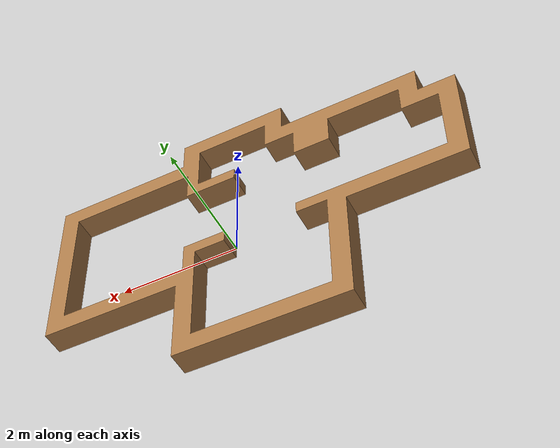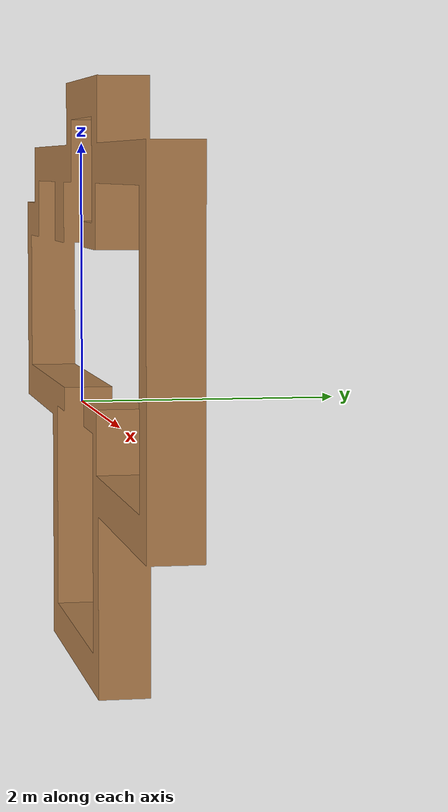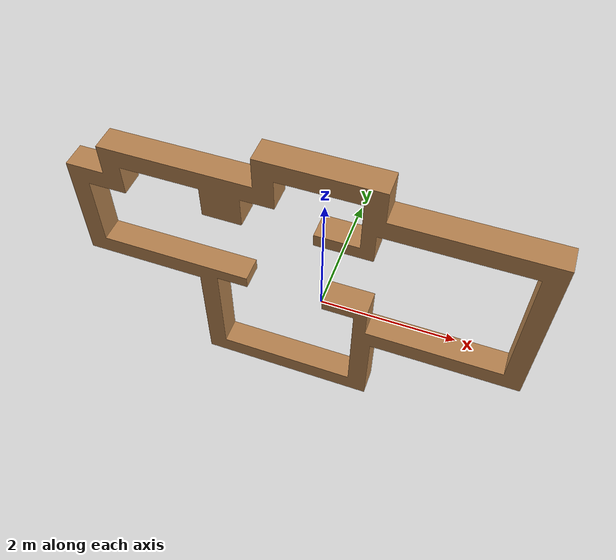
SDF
<sdf version='1.7'>
  <model name='urdf_1'>
  <static>true</static>
    <link name='base_link'>
      <inertial>
        <pose>-0.37306 0.21 0.38478 0 -0 0</pose>
        <mass>2996</mass>
        <inertia>
          <ixx>6188.8</ixx>
          <ixy>-1.0916e-14</ixy>
          <ixz>8.4617</ixz>
          <iyy>19100</iyy>
          <iyz>-7.506e-14</iyz>
          <izz>12991</izz>
        </inertia>
      </inertial>
      <collision name='base_link_collision'>
        <pose>0 0 0 0 -0 0</pose>
        <geometry>
          <mesh>
            <scale>1 1 1</scale>
            <uri>/home/jiaxin/workspace/turtlebot3/src/turtlebot3_simulations/turtlebot3_gazebo/meshes/base_link.STL</uri>
          </mesh>
        </geometry>
        <max_contacts>10</max_contacts>
        <surface>
          <contact>
            <ode/>
          </contact>
          <bounce/>
          <friction>
            <torsional>
              <ode/>
            </torsional>
            <ode/>
          </friction>
        </surface>
      </collision>
      <visual name='base_link_visual'>
        <pose>0 0 0 0 -0 0</pose>
        <geometry>
          <mesh>
            <scale>1 1 1</scale>
            <uri>/home/jiaxin/workspace/turtlebot3/src/turtlebot3_simulations/turtlebot3_gazebo/meshes/base_link.STL</uri>
          </mesh>
        </geometry>
        <material>
          <script>
            <uri>file://media/materials/scripts/gazebo.material</uri>
            <name>Gazebo/Wood</name>
          </script>
          <ambient>1 0.764706 0.305882 1</ambient>
        </material>
      </visual>
      <self_collide>0</self_collide>
      <enable_wind>0</enable_wind>
      <kinematic>0</kinematic>
    </link>
    <pose>0 0 0 0 -0 0</pose>
  </model>
</sdf>
